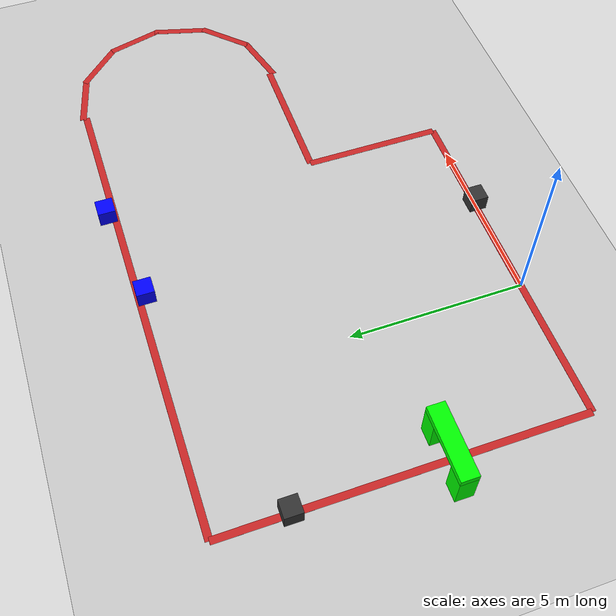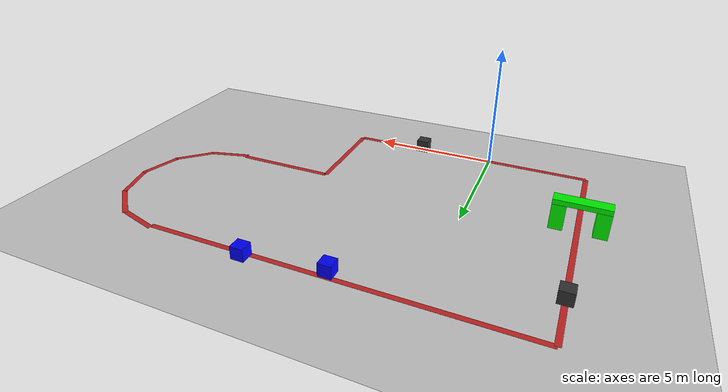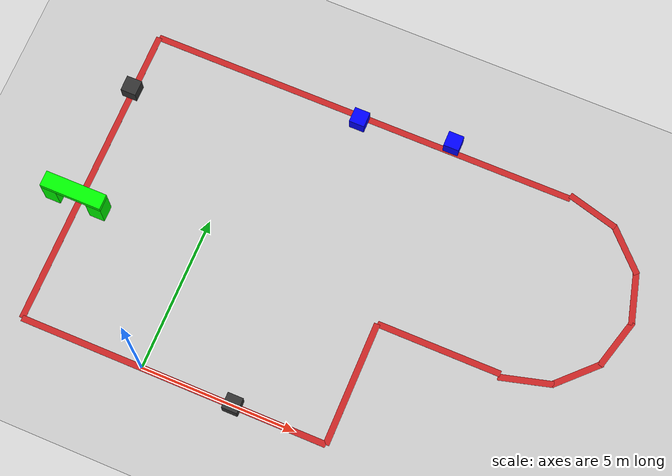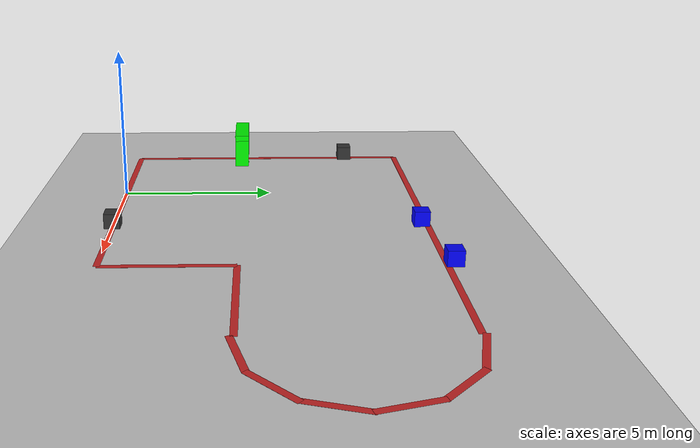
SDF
<?xml version="1.0" ?>
<sdf version="1.5">
  <world name="default">
    <include><uri>model://sun</uri></include>
    <include><uri>model://ground_plane</uri></include>

    <model name="red_path">
      <static>true</static>

      <link name="s1"><pose>3 0 0.001 0 0 0</pose>
        <visual name="v1"><geometry><box><size>6 0.2 0.002</size></box></geometry>
        <material><script><uri>file://media/materials/scripts/gazebo.material</uri><name>Gazebo/Red</name></script></material></visual></link>

      <link name="s2"><pose>6 2 0.001 0 0 0</pose>
        <visual name="v2"><geometry><box><size>0.2 4 0.002</size></box></geometry>
        <material><script><uri>file://media/materials/scripts/gazebo.material</uri><name>Gazebo/Red</name></script></material></visual></link>

      <link name="s3"><pose>8 4 0.001 0 0 0</pose>
        <visual name="v3"><geometry><box><size>4 0.2 0.002</size></box></geometry>
        <material><script><uri>file://media/materials/scripts/gazebo.material</uri><name>Gazebo/Red</name></script></material></visual></link>

      <link name="c1"><pose>10.77 4.10 0.001 0 0 0.26</pose>
        <visual name="vc1"><geometry><box><size>1.7 0.2 0.002</size></box></geometry>
        <material><script><uri>file://media/materials/scripts/gazebo.material</uri><name>Gazebo/Red</name></script></material></visual></link>
      <link name="c2"><pose>12.12 4.88 0.001 0 0 0.785</pose>
        <visual name="vc2"><geometry><box><size>1.7 0.2 0.002</size></box></geometry>
        <material><script><uri>file://media/materials/scripts/gazebo.material</uri><name>Gazebo/Red</name></script></material></visual></link>
      <link name="c3"><pose>12.89 6.22 0.001 0 0 1.30</pose>
        <visual name="vc3"><geometry><box><size>1.7 0.2 0.002</size></box></geometry>
        <material><script><uri>file://media/materials/scripts/gazebo.material</uri><name>Gazebo/Red</name></script></material></visual></link>
      <link name="c4"><pose>12.89 7.77 0.001 0 0 1.83</pose>
        <visual name="vc4"><geometry><box><size>1.7 0.2 0.002</size></box></geometry>
        <material><script><uri>file://media/materials/scripts/gazebo.material</uri><name>Gazebo/Red</name></script></material></visual></link>
      <link name="c5"><pose>12.12 9.12 0.001 0 0 2.35</pose>
        <visual name="vc5"><geometry><box><size>1.7 0.2 0.002</size></box></geometry>
        <material><script><uri>file://media/materials/scripts/gazebo.material</uri><name>Gazebo/Red</name></script></material></visual></link>
      <link name="c6"><pose>10.77 9.89 0.001 0 0 2.88</pose>
        <visual name="vc6"><geometry><box><size>1.7 0.2 0.002</size></box></geometry>
        <material><script><uri>file://media/materials/scripts/gazebo.material</uri><name>Gazebo/Red</name></script></material></visual></link>

      <link name="s4"><pose>3 10 0.001 0 0 0</pose>
        <visual name="v4"><geometry><box><size>14 0.2 0.002</size></box></geometry>
        <material><script><uri>file://media/materials/scripts/gazebo.material</uri><name>Gazebo/Red</name></script></material></visual></link>

      <link name="s5"><pose>-4 5 0.001 0 0 0</pose>
        <visual name="v5"><geometry><box><size>0.2 10 0.002</size></box></geometry>
        <material><script><uri>file://media/materials/scripts/gazebo.material</uri><name>Gazebo/Red</name></script></material></visual></link>

      <link name="s6"><pose>-2 0 0.001 0 0 0</pose>
        <visual name="v6"><geometry><box><size>4 0.2 0.002</size></box></geometry>
        <material><script><uri>file://media/materials/scripts/gazebo.material</uri><name>Gazebo/Red</name></script></material></visual></link>
    </model>

    <model name="obs_start"><static>true</static><link name="l_start"><pose>3 0 0.25 0 0 0</pose>
      <collision name="c_start"><geometry><box><size>0.5 0.5 0.5</size></box></geometry></collision>
      <visual name="v_start"><geometry><box><size>0.5 0.5 0.5</size></box></geometry><material><ambient>0.2 0.2 0.2 1</ambient></material></visual>
    </link></model>

    <model name="obs_slalom1"><static>true</static><link name="l_s1"><pose>6 10.2 0.25 0 0 0</pose>
      <collision name="c_s1"><geometry><box><size>0.5 0.5 0.5</size></box></geometry></collision>
      <visual name="v_s1"><geometry><box><size>0.5 0.5 0.5</size></box></geometry><material><ambient>0 0 1 1</ambient></material></visual>
    </link></model>

    <model name="obs_slalom2"><static>true</static><link name="l_s2"><pose>3 9.8 0.25 0 0 0</pose>
      <collision name="c_s2"><geometry><box><size>0.5 0.5 0.5</size></box></geometry></collision>
      <visual name="v_s2"><geometry><box><size>0.5 0.5 0.5</size></box></geometry><material><ambient>0 0 1 1</ambient></material></visual>
    </link></model>

    <model name="obs_blind"><static>true</static><link name="l_blind"><pose>-4 8 0.25 0 0 0</pose>
      <collision name="c_blind"><geometry><box><size>0.5 0.5 0.5</size></box></geometry></collision>
      <visual name="v_blind"><geometry><box><size>0.5 0.5 0.5</size></box></geometry><material><ambient>0.2 0.2 0.2 1</ambient></material></visual>
    </link></model>

    <model name="tunnel"><static>true</static>
      <link name="p_left"><pose>-3.25 4 0.5 0 0 0</pose>
        <collision name="cpl"><geometry><box><size>0.5 0.5 1.0</size></box></geometry></collision>
        <visual name="vpl"><geometry><box><size>0.5 0.5 1.0</size></box></geometry><material><ambient>0 1 0 1</ambient></material></visual></link>
      <link name="p_right"><pose>-4.75 4 0.5 0 0 0</pose>
        <collision name="cpr"><geometry><box><size>0.5 0.5 1.0</size></box></geometry></collision>
        <visual name="vpr"><geometry><box><size>0.5 0.5 1.0</size></box></geometry><material><ambient>0 1 0 1</ambient></material></visual></link>
      <link name="roof"><pose>-4 4 1.1 0 0 0</pose>
        <visual name="vroof"><geometry><box><size>2.0 0.5 0.2</size></box></geometry><material><ambient>0 1 0 1</ambient></material></visual></link>
    </model>

  </world>
</sdf>
